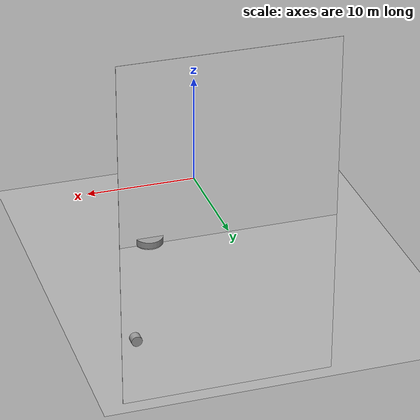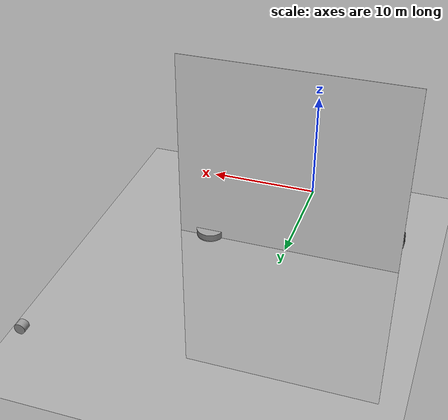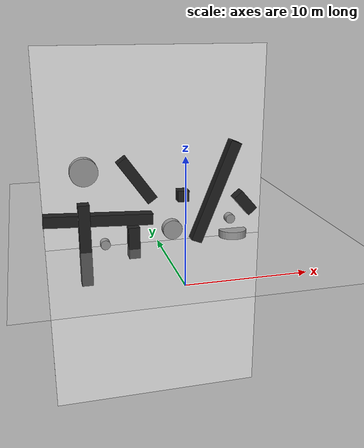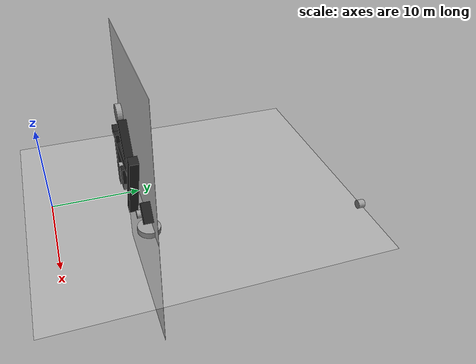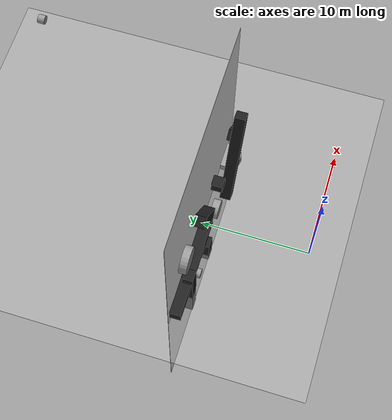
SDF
<sdf version="1.7">
 <world name="default">
  <light name="sun" type="directional">
   <pose>0 0 10 0 -0 0</pose>
   <diffuse>0.8 0.8 0.8 1</diffuse>
   <specular>0.2 0.2 0.2 1</specular>
   <attenuation>
    <range>1000</range>
    <constant>0.9</constant>
    <linear>0.01</linear>
    <quadratic>0.001</quadratic>
   </attenuation>
   <direction>-0.5 0.1 -0.9</direction>
   <spot><inner_angle>0</inner_angle><outer_angle>0</outer_angle><falloff>0</falloff></spot>
  </light>
  <model name="ground_plane">
   <static>1</static>
   <link name="link">
    <collision name="collision">
     <geometry><plane><normal>0 0 1</normal><size>100 100</size></plane></geometry>
     <surface>
      <contact><collide_bitmask>65535</collide_bitmask></contact>
      <friction><ode><mu>100</mu><mu2>50</mu2></ode></friction>
     </surface>
    </collision>
    <visual name="visual">
     <cast_shadows>0</cast_shadows>
     <geometry><plane><normal>0 0 1</normal><size>100 100</size></plane></geometry>
     <material>
      <script><uri>file://media/materials/scripts/gazebo.material</uri><name>Gazebo/Grey</name></script>
     </material>
    </visual>
   </link>
  </model>
  <gravity>0 0 -9.8</gravity>
  <magnetic_field>6e-06 2.3e-05 -4.2e-05</magnetic_field>
  <atmosphere type="adiabatic"/>
  <physics type="ode">
   <max_step_size>0.001</max_step_size>
   <real_time_factor>1</real_time_factor>
   <real_time_update_rate>1000</real_time_update_rate>
  </physics>
  <scene><ambient>0.4 0.4 0.4 1</ambient><background>0.7 0.7 0.7 1</background><shadows>1</shadows></scene>
  <spherical_coordinates>
   <surface_model>EARTH_WGS84</surface_model>
   <latitude_deg>0</latitude_deg>
   <longitude_deg>0</longitude_deg>
   <elevation>0</elevation>
   <heading_deg>0</heading_deg>
  </spherical_coordinates>
  <model name="Untitled_0">
   <link name="link_0">
    <inertial>
     <mass>1</mass>
     <inertia>
      <ixx>0.166667</ixx>
      <ixy>0</ixy>
      <ixz>0</ixz>
      <iyy>0.166667</iyy>
      <iyz>0</iyz>
      <izz>0.166667</izz>
     </inertia>
    </inertial>
    <gravity>0</gravity>
    <visual name="visual">
     <geometry><box><size>1 1 7.4259</size></box></geometry>
     <material>
      <lighting>1</lighting>
      <script><uri>file://media/materials/scripts/gazebo.material</uri><name>Gazebo/Black</name></script>
      <shader type="pixel"><normal_map>__default__</normal_map></shader>
      <ambient>0 0 0 1</ambient>
      <diffuse>0 0 0 1</diffuse>
      <specular>0.1 0.1 0.1 1</specular>
      <emissive>0 0 0 1</emissive>
     </material>
    </visual>
    <collision name="collision">
     <geometry><box><size>1 1 7.4259</size></box></geometry>
     <surface>
      <friction>
       <ode><mu>1</mu><mu2>1</mu2><fdir1>0 0 0</fdir1><slip1>0</slip1><slip2>0</slip2></ode>
       <torsional>
        <coefficient>1</coefficient>
        <patch_radius>0</patch_radius>
        <surface_radius>0</surface_radius>
        <use_patch_radius>1</use_patch_radius>
        <ode><slip>0</slip></ode>
       </torsional>
      </friction>
      <bounce><restitution_coefficient>0</restitution_coefficient><threshold>1e+06</threshold></bounce>
      <contact>
       <collide_without_contact>0</collide_without_contact>
       <collide_without_contact_bitmask>1</collide_without_contact_bitmask>
       <collide_bitmask>1</collide_bitmask>
       <ode>
        <soft_cfm>0</soft_cfm>
        <soft_erp>0.2</soft_erp>
        <kp>1e+13</kp>
        <kd>1</kd>
        <max_vel>0.01</max_vel>
        <min_depth>0</min_depth>
       </ode>
       <bullet>
        <split_impulse>1</split_impulse>
        <split_impulse_penetration_threshold>-0.01</split_impulse_penetration_threshold>
        <soft_cfm>0</soft_cfm>
        <soft_erp>0.2</soft_erp>
        <kp>1e+13</kp>
        <kd>1</kd>
       </bullet>
      </contact>
     </surface>
    </collision>
   </link>
   <static>1</static>
   <pose>-6.5925 9.21128 0.5 0 -0 0</pose>
  </model>
  <model name="Untitled_0_clone">
   <link name="link_0">
    <inertial>
     <mass>1</mass>
     <inertia>
      <ixx>0.166667</ixx>
      <ixy>0</ixy>
      <ixz>0</ixz>
      <iyy>0.166667</iyy>
      <iyz>0</iyz>
      <izz>0.166667</izz>
     </inertia>
    </inertial>
    <gravity>0</gravity>
    <visual name="visual">
     <geometry><box><size>1 1 4.53542</size></box></geometry>
     <material>
      <lighting>1</lighting>
      <script><uri>file://media/materials/scripts/gazebo.material</uri><name>Gazebo/Black</name></script>
      <shader type="pixel"><normal_map>__default__</normal_map></shader>
      <ambient>0 0 0 1</ambient>
      <diffuse>0 0 0 1</diffuse>
      <specular>0.1 0.1 0.1 1</specular>
      <emissive>0 0 0 1</emissive>
     </material>
    </visual>
    <collision name="collision">
     <geometry><box><size>1 1 4.53542</size></box></geometry>
     <surface>
      <friction>
       <ode><mu>1</mu><mu2>1</mu2><fdir1>0 0 0</fdir1><slip1>0</slip1><slip2>0</slip2></ode>
       <torsional>
        <coefficient>1</coefficient>
        <patch_radius>0</patch_radius>
        <surface_radius>0</surface_radius>
        <use_patch_radius>1</use_patch_radius>
        <ode><slip>0</slip></ode>
       </torsional>
      </friction>
      <bounce><restitution_coefficient>0</restitution_coefficient><threshold>1e+06</threshold></bounce>
      <contact>
       <collide_without_contact>0</collide_without_contact>
       <collide_without_contact_bitmask>1</collide_without_contact_bitmask>
       <collide_bitmask>1</collide_bitmask>
       <ode>
        <soft_cfm>0</soft_cfm>
        <soft_erp>0.2</soft_erp>
        <kp>1e+13</kp>
        <kd>1</kd>
        <max_vel>0.01</max_vel>
        <min_depth>0</min_depth>
       </ode>
       <bullet>
        <split_impulse>1</split_impulse>
        <split_impulse_penetration_threshold>-0.01</split_impulse_penetration_threshold>
        <soft_cfm>0</soft_cfm>
        <soft_erp>0.2</soft_erp>
        <kp>1e+13</kp>
        <kd>1</kd>
       </bullet>
      </contact>
     </surface>
    </collision>
   </link>
   <static>1</static>
   <pose>-1.89967 9.29975 6.03059 0 -0.621909 0</pose>
  </model>
  <model name="Untitled_0_clone_0">
   <link name="link_0">
    <inertial>
     <mass>1</mass>
     <inertia>
      <ixx>0.166667</ixx>
      <ixy>0</ixy>
      <ixz>0</ixz>
      <iyy>0.166667</iyy>
      <iyz>0</iyz>
      <izz>0.166667</izz>
     </inertia>
    </inertial>
    <gravity>0</gravity>
    <visual name="visual">
     <geometry><box><size>1 1 2.86647</size></box></geometry>
     <material>
      <lighting>1</lighting>
      <script><uri>file://media/materials/scripts/gazebo.material</uri><name>Gazebo/Black</name></script>
      <shader type="pixel"><normal_map>__default__</normal_map></shader>
      <ambient>0 0 0 1</ambient>
      <diffuse>0 0 0 1</diffuse>
      <specular>0.1 0.1 0.1 1</specular>
      <emissive>0 0 0 1</emissive>
     </material>
    </visual>
    <collision name="collision">
     <geometry><box><size>1 1 2.86647</size></box></geometry>
     <surface>
      <friction>
       <ode><mu>1</mu><mu2>1</mu2><fdir1>0 0 0</fdir1><slip1>0</slip1><slip2>0</slip2></ode>
       <torsional>
        <coefficient>1</coefficient>
        <patch_radius>0</patch_radius>
        <surface_radius>0</surface_radius>
        <use_patch_radius>1</use_patch_radius>
        <ode><slip>0</slip></ode>
       </torsional>
      </friction>
      <bounce><restitution_coefficient>0</restitution_coefficient><threshold>1e+06</threshold></bounce>
      <contact>
       <collide_without_contact>0</collide_without_contact>
       <collide_without_contact_bitmask>1</collide_without_contact_bitmask>
       <collide_bitmask>1</collide_bitmask>
       <ode>
        <soft_cfm>0</soft_cfm>
        <soft_erp>0.2</soft_erp>
        <kp>1e+13</kp>
        <kd>1</kd>
        <max_vel>0.01</max_vel>
        <min_depth>0</min_depth>
       </ode>
       <bullet>
        <split_impulse>1</split_impulse>
        <split_impulse_penetration_threshold>-0.01</split_impulse_penetration_threshold>
        <soft_cfm>0</soft_cfm>
        <soft_erp>0.2</soft_erp>
        <kp>1e+13</kp>
        <kd>1</kd>
       </bullet>
      </contact>
     </surface>
    </collision>
   </link>
   <static>1</static>
   <pose>-2.33615 9.0135 0.5 0 -0 0</pose>
  </model>
  <model name="Untitled_0_clone_0_clone">
   <link name="link_0">
    <inertial>
     <mass>1</mass>
     <inertia>
      <ixx>0.166667</ixx>
      <ixy>0</ixy>
      <ixz>0</ixz>
      <iyy>0.166667</iyy>
      <iyz>0</iyz>
      <izz>0.166667</izz>
     </inertia>
    </inertial>
    <gravity>0</gravity>
    <visual name="visual">
     <geometry><box><size>1 1 9.50746</size></box></geometry>
     <material>
      <lighting>1</lighting>
      <script><uri>file://media/materials/scripts/gazebo.material</uri><name>Gazebo/Black</name></script>
      <shader type="pixel"><normal_map>__default__</normal_map></shader>
      <ambient>0 0 0 1</ambient>
      <diffuse>0 0 0 1</diffuse>
      <specular>0.1 0.1 0.1 1</specular>
      <emissive>0 0 0 1</emissive>
     </material>
    </visual>
    <collision name="collision">
     <geometry><box><size>1 1 9.50746</size></box></geometry>
     <surface>
      <friction>
       <ode><mu>1</mu><mu2>1</mu2><fdir1>0 0 0</fdir1><slip1>0</slip1><slip2>0</slip2></ode>
       <torsional>
        <coefficient>1</coefficient>
        <patch_radius>0</patch_radius>
        <surface_radius>0</surface_radius>
        <use_patch_radius>1</use_patch_radius>
        <ode><slip>0</slip></ode>
       </torsional>
      </friction>
      <bounce><restitution_coefficient>0</restitution_coefficient><threshold>1e+06</threshold></bounce>
      <contact>
       <collide_without_contact>0</collide_without_contact>
       <collide_without_contact_bitmask>1</collide_without_contact_bitmask>
       <collide_bitmask>1</collide_bitmask>
       <ode>
        <soft_cfm>0</soft_cfm>
        <soft_erp>0.2</soft_erp>
        <kp>1e+13</kp>
        <kd>1</kd>
        <max_vel>0.01</max_vel>
        <min_depth>0</min_depth>
       </ode>
       <bullet>
        <split_impulse>1</split_impulse>
        <split_impulse_penetration_threshold>-0.01</split_impulse_penetration_threshold>
        <soft_cfm>0</soft_cfm>
        <soft_erp>0.2</soft_erp>
        <kp>1e+13</kp>
        <kd>1</kd>
       </bullet>
      </contact>
     </surface>
    </collision>
   </link>
   <static>1</static>
   <pose>4.99087 8.66089 4.6847 0 0.381503 0</pose>
  </model>
  <model name="Untitled_0_clone_0_clone_0">
   <link name="link_0">
    <inertial>
     <mass>1</mass>
     <inertia>
      <ixx>0.166667</ixx>
      <ixy>0</ixy>
      <ixz>0</ixz>
      <iyy>0.166667</iyy>
      <iyz>0</iyz>
      <izz>0.166667</izz>
     </inertia>
    </inertial>
    <gravity>0</gravity>
    <visual name="visual">
     <geometry><box><size>1 1 1</size></box></geometry>
     <material>
      <lighting>1</lighting>
      <script><uri>file://media/materials/scripts/gazebo.material</uri><name>Gazebo/Black</name></script>
      <shader type="pixel"><normal_map>__default__</normal_map></shader>
      <ambient>0 0 0 1</ambient>
      <diffuse>0 0 0 1</diffuse>
      <specular>0.1 0.1 0.1 1</specular>
      <emissive>0 0 0 1</emissive>
     </material>
    </visual>
    <collision name="collision">
     <geometry><box><size>1 1 1</size></box></geometry>
     <surface>
      <friction>
       <ode><mu>1</mu><mu2>1</mu2><fdir1>0 0 0</fdir1><slip1>0</slip1><slip2>0</slip2></ode>
       <torsional>
        <coefficient>1</coefficient>
        <patch_radius>0</patch_radius>
        <surface_radius>0</surface_radius>
        <use_patch_radius>1</use_patch_radius>
        <ode><slip>0</slip></ode>
       </torsional>
      </friction>
      <bounce><restitution_coefficient>0</restitution_coefficient><threshold>1e+06</threshold></bounce>
      <contact>
       <collide_without_contact>0</collide_without_contact>
       <collide_without_contact_bitmask>1</collide_without_contact_bitmask>
       <collide_bitmask>1</collide_bitmask>
       <ode>
        <soft_cfm>0</soft_cfm>
        <soft_erp>0.2</soft_erp>
        <kp>1e+13</kp>
        <kd>1</kd>
        <max_vel>0.01</max_vel>
        <min_depth>0</min_depth>
       </ode>
       <bullet>
        <split_impulse>1</split_impulse>
        <split_impulse_penetration_threshold>-0.01</split_impulse_penetration_threshold>
        <soft_cfm>0</soft_cfm>
        <soft_erp>0.2</soft_erp>
        <kp>1e+13</kp>
        <kd>1</kd>
       </bullet>
      </contact>
     </surface>
    </collision>
   </link>
   <static>1</static>
   <pose>2.18223 9.24494 4.39921 0 -0 0</pose>
  </model>
  <model name="Untitled2">
   <link name="link_2">
    <inertial>
     <mass>20.383</mass>
     <inertia><ixx>1883.11</ixx><ixy>0</ixy><ixz>0</ixz><iyy>2554.49</iyy><iyz>0</iyz><izz>671.385</izz></inertia>
    </inertial>
    <visual name="visual">
     <geometry><box><size>19.8811 0.030727 33.2961</size></box></geometry>
     <material>
      <lighting>1</lighting>
      <script><uri>file://media/materials/scripts/gazebo.material</uri><name>Gazebo/White</name></script>
      <shader type="pixel"><normal_map>__default__</normal_map></shader>
      <ambient>1 1 1 1</ambient>
      <diffuse>1 1 1 1</diffuse>
      <specular>0 0 0 1</specular>
      <emissive>0 0 0 1</emissive>
     </material>
    </visual>
    <collision name="collision">
     <geometry><box><size>19.8811 0.030727 33.2961</size></box></geometry>
     <surface>
      <friction>
       <ode><mu>1</mu><mu2>1</mu2><fdir1>0 0 0</fdir1><slip1>0</slip1><slip2>0</slip2></ode>
       <torsional>
        <coefficient>1</coefficient>
        <patch_radius>0</patch_radius>
        <surface_radius>0</surface_radius>
        <use_patch_radius>1</use_patch_radius>
        <ode><slip>0</slip></ode>
       </torsional>
      </friction>
      <bounce><restitution_coefficient>0</restitution_coefficient><threshold>1e+06</threshold></bounce>
      <contact>
       <collide_without_contact>0</collide_without_contact>
       <collide_without_contact_bitmask>1</collide_without_contact_bitmask>
       <collide_bitmask>1</collide_bitmask>
       <ode>
        <soft_cfm>0</soft_cfm>
        <soft_erp>0.2</soft_erp>
        <kp>1e+13</kp>
        <kd>1</kd>
        <max_vel>0.01</max_vel>
        <min_depth>0</min_depth>
       </ode>
       <bullet>
        <split_impulse>1</split_impulse>
        <split_impulse_penetration_threshold>-0.01</split_impulse_penetration_threshold>
        <soft_cfm>0</soft_cfm>
        <soft_erp>0.2</soft_erp>
        <kp>1e+13</kp>
        <kd>1</kd>
       </bullet>
      </contact>
     </surface>
    </collision>
   </link>
   <static>1</static>
   <pose>-0.103476 10.0194 0.5 0 -0 0</pose>
  </model>
  <model name="Untitled3">
   <link name="link_3">
    <inertial>
     <mass>0.678157</mass>
     <inertia>
      <ixx>0.0683752</ixx>
      <ixy>0</ixy>
      <ixz>0</ixz>
      <iyy>0.0683752</iyy>
      <iyz>0</iyz>
      <izz>0.0847696</izz>
     </inertia>
    </inertial>
    <pose>0 0 -0 1.5708 -0 0</pose>
    <gravity>0</gravity>
    <visual name="visual">
     <geometry><cylinder><radius>0.87639</radius><length>0.67816</length></cylinder></geometry>
     <material>
      <lighting>1</lighting>
      <script><uri>file://media/materials/scripts/gazebo.material</uri><name>Gazebo/Grey</name></script>
      <shader type="pixel"><normal_map>__default__</normal_map></shader>
      <ambient>0.3 0.3 0.3 1</ambient>
      <diffuse>0.7 0.7 0.7 1</diffuse>
      <specular>0.01 0.01 0.01 1</specular>
      <emissive>0 0 0 1</emissive>
     </material>
    </visual>
    <collision name="collision">
     <geometry><cylinder><radius>0.87639</radius><length>0.67816</length></cylinder></geometry>
     <surface>
      <friction>
       <ode><mu>1</mu><mu2>1</mu2><fdir1>0 0 0</fdir1><slip1>0</slip1><slip2>0</slip2></ode>
       <torsional>
        <coefficient>1</coefficient>
        <patch_radius>0</patch_radius>
        <surface_radius>0</surface_radius>
        <use_patch_radius>1</use_patch_radius>
        <ode><slip>0</slip></ode>
       </torsional>
      </friction>
      <bounce><restitution_coefficient>0</restitution_coefficient><threshold>1e+06</threshold></bounce>
      <contact>
       <collide_without_contact>0</collide_without_contact>
       <collide_without_contact_bitmask>1</collide_without_contact_bitmask>
       <collide_bitmask>1</collide_bitmask>
       <ode>
        <soft_cfm>0</soft_cfm>
        <soft_erp>0.2</soft_erp>
        <kp>1e+13</kp>
        <kd>1</kd>
        <max_vel>0.01</max_vel>
        <min_depth>0</min_depth>
       </ode>
       <bullet>
        <split_impulse>1</split_impulse>
        <split_impulse_penetration_threshold>-0.01</split_impulse_penetration_threshold>
        <soft_cfm>0</soft_cfm>
        <soft_erp>0.2</soft_erp>
        <kp>1e+13</kp>
        <kd>1</kd>
       </bullet>
      </contact>
     </surface>
    </collision>
   </link>
   <static>1</static>
   <pose>1.1685 9.05549 1.37189 0 -0 0</pose>
  </model>
  <model name="Untitled3_clone">
   <link name="link_3">
    <inertial>
     <mass>0.678157</mass>
     <inertia>
      <ixx>0.0683752</ixx>
      <ixy>0</ixy>
      <ixz>0</ixz>
      <iyy>0.0683752</iyy>
      <iyz>0</iyz>
      <izz>0.0847696</izz>
     </inertia>
    </inertial>
    <pose>0 0 -0 1.5708 -0 0</pose>
    <gravity>0</gravity>
    <visual name="visual">
     <geometry><cylinder><radius>1.21421</radius><length>0.67816</length></cylinder></geometry>
     <material>
      <lighting>1</lighting>
      <script><uri>file://media/materials/scripts/gazebo.material</uri><name>Gazebo/Grey</name></script>
      <shader type="pixel"><normal_map>__default__</normal_map></shader>
      <ambient>0.3 0.3 0.3 1</ambient>
      <diffuse>0.7 0.7 0.7 1</diffuse>
      <specular>0.01 0.01 0.01 1</specular>
      <emissive>0 0 0 1</emissive>
     </material>
    </visual>
    <collision name="collision">
     <geometry><cylinder><radius>1.21421</radius><length>0.67816</length></cylinder></geometry>
     <surface>
      <friction>
       <ode><mu>1</mu><mu2>1</mu2><fdir1>0 0 0</fdir1><slip1>0</slip1><slip2>0</slip2></ode>
       <torsional>
        <coefficient>1</coefficient>
        <patch_radius>0</patch_radius>
        <surface_radius>0</surface_radius>
        <use_patch_radius>1</use_patch_radius>
        <ode><slip>0</slip></ode>
       </torsional>
      </friction>
      <bounce><restitution_coefficient>0</restitution_coefficient><threshold>1e+06</threshold></bounce>
      <contact>
       <collide_without_contact>0</collide_without_contact>
       <collide_without_contact_bitmask>1</collide_without_contact_bitmask>
       <collide_bitmask>1</collide_bitmask>
       <ode>
        <soft_cfm>0</soft_cfm>
        <soft_erp>0.2</soft_erp>
        <kp>1e+13</kp>
        <kd>1</kd>
        <max_vel>0.01</max_vel>
        <min_depth>0</min_depth>
       </ode>
       <bullet>
        <split_impulse>1</split_impulse>
        <split_impulse_penetration_threshold>-0.01</split_impulse_penetration_threshold>
        <soft_cfm>0</soft_cfm>
        <soft_erp>0.2</soft_erp>
        <kp>1e+13</kp>
        <kd>1</kd>
       </bullet>
      </contact>
     </surface>
    </collision>
   </link>
   <static>1</static>
   <pose>-6.38586 9.47409 6.95995 0 -0 0</pose>
  </model>
  <model name="Untitled3_clone_0">
   <link name="link_3">
    <inertial>
     <mass>0.678157</mass>
     <inertia>
      <ixx>0.0683752</ixx>
      <ixy>0</ixy>
      <ixz>0</ixz>
      <iyy>0.0683752</iyy>
      <iyz>0</iyz>
      <izz>0.0847696</izz>
     </inertia>
    </inertial>
    <pose>0 0 -0 1.5708 -0 0</pose>
    <gravity>0</gravity>
    <visual name="visual">
     <geometry><cylinder><radius>0.427671</radius><length>0.67816</length></cylinder></geometry>
     <material>
      <lighting>1</lighting>
      <script><uri>file://media/materials/scripts/gazebo.material</uri><name>Gazebo/Grey</name></script>
      <shader type="pixel"><normal_map>__default__</normal_map></shader>
      <ambient>0.3 0.3 0.3 1</ambient>
      <diffuse>0.7 0.7 0.7 1</diffuse>
      <specular>0.01 0.01 0.01 1</specular>
      <emissive>0 0 0 1</emissive>
     </material>
    </visual>
    <collision name="collision">
     <geometry><cylinder><radius>0.427671</radius><length>0.67816</length></cylinder></geometry>
     <surface>
      <friction>
       <ode><mu>1</mu><mu2>1</mu2><fdir1>0 0 0</fdir1><slip1>0</slip1><slip2>0</slip2></ode>
       <torsional>
        <coefficient>1</coefficient>
        <patch_radius>0</patch_radius>
        <surface_radius>0</surface_radius>
        <use_patch_radius>1</use_patch_radius>
        <ode><slip>0</slip></ode>
       </torsional>
      </friction>
      <bounce><restitution_coefficient>0</restitution_coefficient><threshold>1e+06</threshold></bounce>
      <contact>
       <collide_without_contact>0</collide_without_contact>
       <collide_without_contact_bitmask>1</collide_without_contact_bitmask>
       <collide_bitmask>1</collide_bitmask>
       <ode>
        <soft_cfm>0</soft_cfm>
        <soft_erp>0.2</soft_erp>
        <kp>1e+13</kp>
        <kd>1</kd>
        <max_vel>0.01</max_vel>
        <min_depth>0</min_depth>
       </ode>
       <bullet>
        <split_impulse>1</split_impulse>
        <split_impulse_penetration_threshold>-0.01</split_impulse_penetration_threshold>
        <soft_cfm>0</soft_cfm>
        <soft_erp>0.2</soft_erp>
        <kp>1e+13</kp>
        <kd>1</kd>
       </bullet>
      </contact>
     </surface>
    </collision>
   </link>
   <static>1</static>
   <pose>6.4915 8.86649 2.02583 0 -0 0</pose>
  </model>
  <model name="Untitled3_clone_1">
   <link name="link_3">
    <inertial>
     <mass>0.678157</mass>
     <inertia>
      <ixx>0.0683752</ixx>
      <ixy>0</ixy>
      <ixz>0</ixz>
      <iyy>0.0683752</iyy>
      <iyz>0</iyz>
      <izz>0.0847696</izz>
     </inertia>
    </inertial>
    <pose>0 0 -0 1.5708 -0 0</pose>
    <gravity>0</gravity>
    <visual name="visual">
     <geometry><cylinder><radius>1.26426</radius><length>0.67816</length></cylinder></geometry>
     <material>
      <lighting>1</lighting>
      <script><uri>file://media/materials/scripts/gazebo.material</uri><name>Gazebo/Grey</name></script>
      <shader type="pixel"><normal_map>__default__</normal_map></shader>
      <ambient>0.3 0.3 0.3 1</ambient>
      <diffuse>0.7 0.7 0.7 1</diffuse>
      <specular>0.01 0.01 0.01 1</specular>
      <emissive>0 0 0 1</emissive>
     </material>
    </visual>
    <collision name="collision">
     <geometry><cylinder><radius>1.26426</radius><length>0.67816</length></cylinder></geometry>
     <surface>
      <friction>
       <ode><mu>1</mu><mu2>1</mu2><fdir1>0 0 0</fdir1><slip1>0</slip1><slip2>0</slip2></ode>
       <torsional>
        <coefficient>1</coefficient>
        <patch_radius>0</patch_radius>
        <surface_radius>0</surface_radius>
        <use_patch_radius>1</use_patch_radius>
        <ode><slip>0</slip></ode>
       </torsional>
      </friction>
      <bounce><restitution_coefficient>0</restitution_coefficient><threshold>1e+06</threshold></bounce>
      <contact>
       <collide_without_contact>0</collide_without_contact>
       <collide_without_contact_bitmask>1</collide_without_contact_bitmask>
       <collide_bitmask>1</collide_bitmask>
       <ode>
        <soft_cfm>0</soft_cfm>
        <soft_erp>0.2</soft_erp>
        <kp>1e+13</kp>
        <kd>1</kd>
        <max_vel>0.01</max_vel>
        <min_depth>0</min_depth>
       </ode>
       <bullet>
        <split_impulse>1</split_impulse>
        <split_impulse_penetration_threshold>-0.01</split_impulse_penetration_threshold>
        <soft_cfm>0</soft_cfm>
        <soft_erp>0.2</soft_erp>
        <kp>1e+13</kp>
        <kd>1</kd>
       </bullet>
      </contact>
     </surface>
    </collision>
   </link>
   <static>1</static>
   <pose>7.10368 9.62544 0.287789 1.50448 -0 0</pose>
  </model>
  <model name="Untitled_0_clone_0_clone_clone">
   <link name="link_0">
    <inertial>
     <mass>1</mass>
     <inertia>
      <ixx>0.166667</ixx>
      <ixy>0</ixy>
      <ixz>0</ixz>
      <iyy>0.166667</iyy>
      <iyz>0</iyz>
      <izz>0.166667</izz>
     </inertia>
    </inertial>
    <gravity>0</gravity>
    <visual name="visual">
     <geometry><box><size>1 1 9.50746</size></box></geometry>
     <material>
      <lighting>1</lighting>
      <script><uri>file://media/materials/scripts/gazebo.material</uri><name>Gazebo/Black</name></script>
      <shader type="pixel"><normal_map>__default__</normal_map></shader>
      <ambient>0 0 0 1</ambient>
      <diffuse>0 0 0 1</diffuse>
      <specular>0.1 0.1 0.1 1</specular>
      <emissive>0 0 0 1</emissive>
     </material>
    </visual>
    <collision name="collision">
     <geometry><box><size>1 1 9.50746</size></box></geometry>
     <surface>
      <friction>
       <ode><mu>1</mu><mu2>1</mu2><fdir1>0 0 0</fdir1><slip1>0</slip1><slip2>0</slip2></ode>
       <torsional>
        <coefficient>1</coefficient>
        <patch_radius>0</patch_radius>
        <surface_radius>0</surface_radius>
        <use_patch_radius>1</use_patch_radius>
        <ode><slip>0</slip></ode>
       </torsional>
      </friction>
      <bounce><restitution_coefficient>0</restitution_coefficient><threshold>1e+06</threshold></bounce>
      <contact>
       <collide_without_contact>0</collide_without_contact>
       <collide_without_contact_bitmask>1</collide_without_contact_bitmask>
       <collide_bitmask>1</collide_bitmask>
       <ode>
        <soft_cfm>0</soft_cfm>
        <soft_erp>0.2</soft_erp>
        <kp>1e+13</kp>
        <kd>1</kd>
        <max_vel>0.01</max_vel>
        <min_depth>0</min_depth>
       </ode>
       <bullet>
        <split_impulse>1</split_impulse>
        <split_impulse_penetration_threshold>-0.01</split_impulse_penetration_threshold>
        <soft_cfm>0</soft_cfm>
        <soft_erp>0.2</soft_erp>
        <kp>1e+13</kp>
        <kd>1</kd>
       </bullet>
      </contact>
     </surface>
    </collision>
   </link>
   <static>1</static>
   <pose>-5.32317 9.3641 2.69745 3.14158 1.52382 3.14158</pose>
  </model>
  <model name="Untitled3_clone_0_clone">
   <link name="link_3">
    <inertial>
     <mass>0.678157</mass>
     <inertia>
      <ixx>0.0683752</ixx>
      <ixy>0</ixy>
      <ixz>0</ixz>
      <iyy>0.0683752</iyy>
      <iyz>0</iyz>
      <izz>0.0847696</izz>
     </inertia>
    </inertial>
    <pose>0 0 -0 1.5708 -0 0</pose>
    <gravity>0</gravity>
    <visual name="visual">
     <geometry><cylinder><radius>0.427671</radius><length>0.67816</length></cylinder></geometry>
     <material>
      <lighting>1</lighting>
      <script><uri>file://media/materials/scripts/gazebo.material</uri><name>Gazebo/Grey</name></script>
      <shader type="pixel"><normal_map>__default__</normal_map></shader>
      <ambient>0.3 0.3 0.3 1</ambient>
      <diffuse>0.7 0.7 0.7 1</diffuse>
      <specular>0.01 0.01 0.01 1</specular>
      <emissive>0 0 0 1</emissive>
     </material>
    </visual>
    <collision name="collision">
     <geometry><cylinder><radius>0.427671</radius><length>0.67816</length></cylinder></geometry>
     <surface>
      <friction>
       <ode><mu>1</mu><mu2>1</mu2><fdir1>0 0 0</fdir1><slip1>0</slip1><slip2>0</slip2></ode>
       <torsional>
        <coefficient>1</coefficient>
        <patch_radius>0</patch_radius>
        <surface_radius>0</surface_radius>
        <use_patch_radius>1</use_patch_radius>
        <ode><slip>0</slip></ode>
       </torsional>
      </friction>
      <bounce><restitution_coefficient>0</restitution_coefficient><threshold>1e+06</threshold></bounce>
      <contact>
       <collide_without_contact>0</collide_without_contact>
       <collide_without_contact_bitmask>1</collide_without_contact_bitmask>
       <collide_bitmask>1</collide_bitmask>
       <ode>
        <soft_cfm>0</soft_cfm>
        <soft_erp>0.2</soft_erp>
        <kp>1e+13</kp>
        <kd>1</kd>
        <max_vel>0.01</max_vel>
        <min_depth>0</min_depth>
       </ode>
       <bullet>
        <split_impulse>1</split_impulse>
        <split_impulse_penetration_threshold>-0.01</split_impulse_penetration_threshold>
        <soft_cfm>0</soft_cfm>
        <soft_erp>0.2</soft_erp>
        <kp>1e+13</kp>
        <kd>1</kd>
       </bullet>
      </contact>
     </surface>
    </collision>
   </link>
   <static>1</static>
   <pose>14.12 30.2748 4.07368 0 -0 0</pose>
  </model>
  <model name="Untitled3_clone_0_clone_0">
   <link name="link_3">
    <inertial>
     <mass>0.678157</mass>
     <inertia>
      <ixx>0.0683752</ixx>
      <ixy>0</ixy>
      <ixz>0</ixz>
      <iyy>0.0683752</iyy>
      <iyz>0</iyz>
      <izz>0.0847696</izz>
     </inertia>
    </inertial>
    <pose>0 0 -0 1.5708 -0 0</pose>
    <gravity>0</gravity>
    <visual name="visual">
     <geometry><cylinder><radius>0.427671</radius><length>0.67816</length></cylinder></geometry>
     <material>
      <lighting>1</lighting>
      <script><uri>file://media/materials/scripts/gazebo.material</uri><name>Gazebo/Grey</name></script>
      <shader type="pixel"><normal_map>__default__</normal_map></shader>
      <ambient>0.3 0.3 0.3 1</ambient>
      <diffuse>0.7 0.7 0.7 1</diffuse>
      <specular>0.01 0.01 0.01 1</specular>
      <emissive>0 0 0 1</emissive>
     </material>
    </visual>
    <collision name="collision">
     <geometry><cylinder><radius>0.427671</radius><length>0.67816</length></cylinder></geometry>
     <surface>
      <friction>
       <ode><mu>1</mu><mu2>1</mu2><fdir1>0 0 0</fdir1><slip1>0</slip1><slip2>0</slip2></ode>
       <torsional>
        <coefficient>1</coefficient>
        <patch_radius>0</patch_radius>
        <surface_radius>0</surface_radius>
        <use_patch_radius>1</use_patch_radius>
        <ode><slip>0</slip></ode>
       </torsional>
      </friction>
      <bounce><restitution_coefficient>0</restitution_coefficient><threshold>1e+06</threshold></bounce>
      <contact>
       <collide_without_contact>0</collide_without_contact>
       <collide_without_contact_bitmask>1</collide_without_contact_bitmask>
       <collide_bitmask>1</collide_bitmask>
       <ode>
        <soft_cfm>0</soft_cfm>
        <soft_erp>0.2</soft_erp>
        <kp>1e+13</kp>
        <kd>1</kd>
        <max_vel>0.01</max_vel>
        <min_depth>0</min_depth>
       </ode>
       <bullet>
        <split_impulse>1</split_impulse>
        <split_impulse_penetration_threshold>-0.01</split_impulse_penetration_threshold>
        <soft_cfm>0</soft_cfm>
        <soft_erp>0.2</soft_erp>
        <kp>1e+13</kp>
        <kd>1</kd>
       </bullet>
      </contact>
     </surface>
    </collision>
   </link>
   <static>1</static>
   <pose>-4.88396 8.94051 0.527514 0 -0 0</pose>
  </model>
  <model name="Untitled_0_clone_0_clone_0_clone">
   <link name="link_0">
    <inertial>
     <mass>1</mass>
     <inertia>
      <ixx>0.166667</ixx>
      <ixy>0</ixy>
      <ixz>0</ixz>
      <iyy>0.166667</iyy>
      <iyz>0</iyz>
      <izz>0.166667</izz>
     </inertia>
    </inertial>
    <gravity>0</gravity>
    <visual name="visual">
     <geometry><box><size>1 1 2.22627</size></box></geometry>
     <material>
      <lighting>1</lighting>
      <script><uri>file://media/materials/scripts/gazebo.material</uri><name>Gazebo/Black</name></script>
      <shader type="pixel"><normal_map>__default__</normal_map></shader>
      <ambient>0 0 0 1</ambient>
      <diffuse>0 0 0 1</diffuse>
      <specular>0.1 0.1 0.1 1</specular>
      <emissive>0 0 0 1</emissive>
     </material>
    </visual>
    <collision name="collision">
     <geometry><box><size>1 1 2.22627</size></box></geometry>
     <surface>
      <friction>
       <ode><mu>1</mu><mu2>1</mu2><fdir1>0 0 0</fdir1><slip1>0</slip1><slip2>0</slip2></ode>
       <torsional>
        <coefficient>1</coefficient>
        <patch_radius>0</patch_radius>
        <surface_radius>0</surface_radius>
        <use_patch_radius>1</use_patch_radius>
        <ode><slip>0</slip></ode>
       </torsional>
      </friction>
      <bounce><restitution_coefficient>0</restitution_coefficient><threshold>1e+06</threshold></bounce>
      <contact>
       <collide_without_contact>0</collide_without_contact>
       <collide_without_contact_bitmask>1</collide_without_contact_bitmask>
       <collide_bitmask>1</collide_bitmask>
       <ode>
        <soft_cfm>0</soft_cfm>
        <soft_erp>0.2</soft_erp>
        <kp>1e+13</kp>
        <kd>1</kd>
        <max_vel>0.01</max_vel>
        <min_depth>0</min_depth>
       </ode>
       <bullet>
        <split_impulse>1</split_impulse>
        <split_impulse_penetration_threshold>-0.01</split_impulse_penetration_threshold>
        <soft_cfm>0</soft_cfm>
        <soft_erp>0.2</soft_erp>
        <kp>1e+13</kp>
        <kd>1</kd>
       </bullet>
      </contact>
     </surface>
    </collision>
   </link>
   <static>1</static>
   <pose>8.01725 9.32735 3.29428 0 -0.718485 0</pose>
  </model>
 </world>
</sdf>
